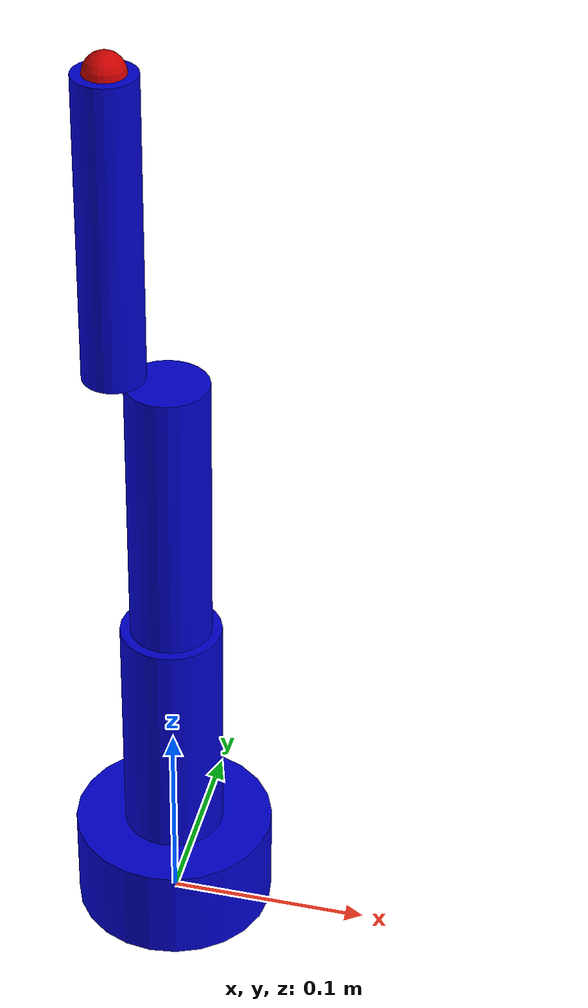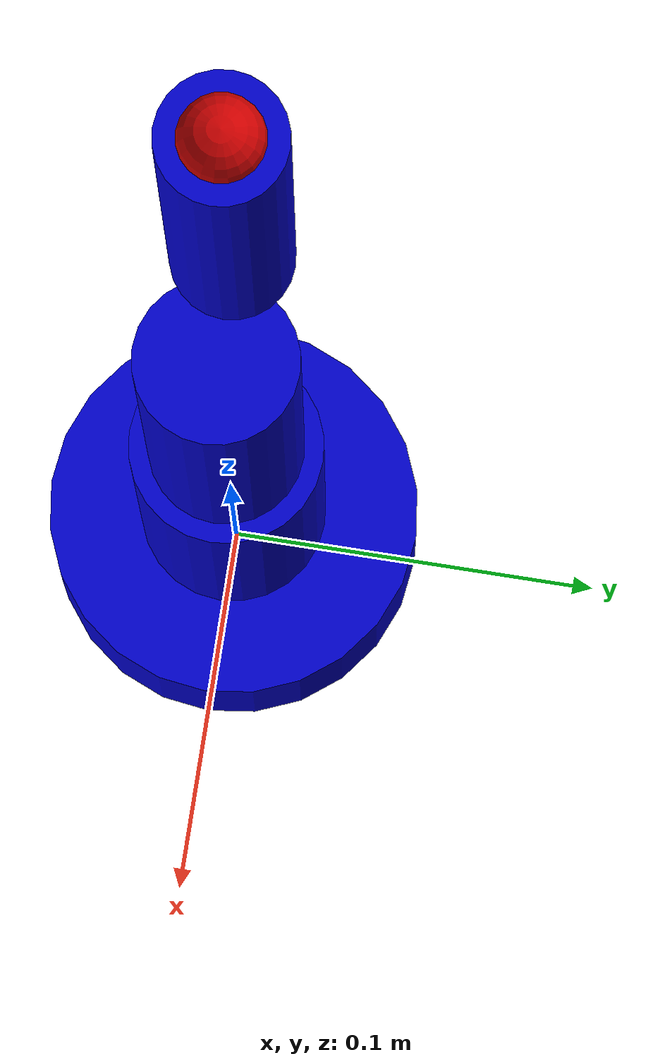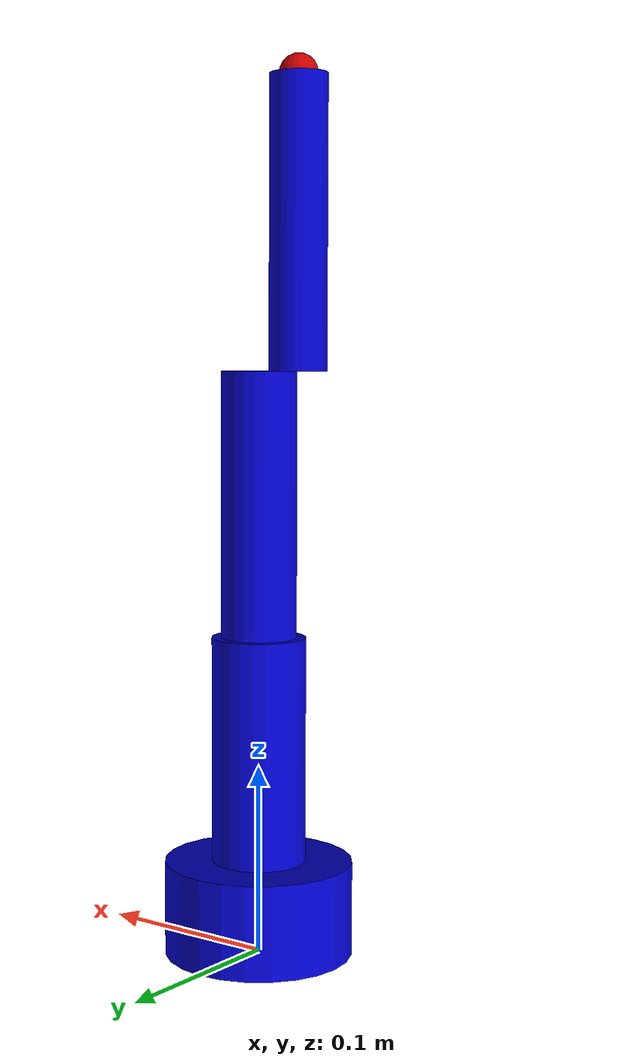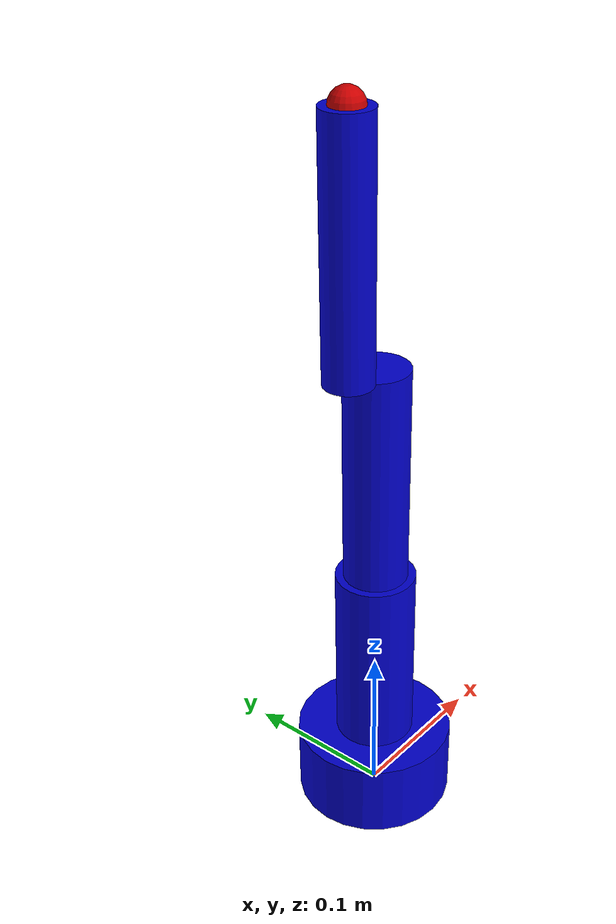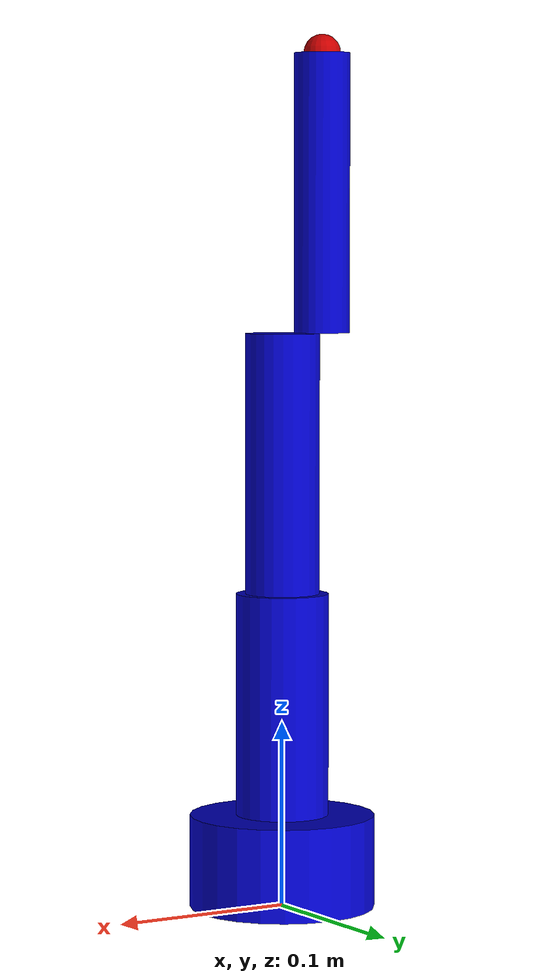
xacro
<?xml version="1.0"?>
<robot xmlns:xacro="http://www.ros.org/wiki/xacro" name="robotarm">
    <xacro:arg name="initial_positions_file" default="initial_positions.yaml" />

    <!-- Import robotarm urdf file -->
    <xacro:include filename="$(find robotarm_software)/urdf/robotarm.urdf" />

    <!-- Import control_xacro -->
    <xacro:include filename="robotarm.ros2_control.xacro" />

    <xacro:robotarm_ros2_control name="FakeSystem" initial_positions_file="$(arg initial_positions_file)"/>

</robot>

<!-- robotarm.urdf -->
<robot name="robotarm">
  <material name="blue">
    <color rgba="0 0 0.8 1"/>
  </material>

  <material name="black">
    <color rgba="0 0 0 1"/>
  </material>

  <material name="red">
    <color rgba="0.8 0 0 1"/>
  </material>

  <link name="base_link">
    <visual>
      <geometry>
        <cylinder length="0.05" radius="0.05"/>
      </geometry>
      <origin xyz="0 0 0.025"/>
      <material name="blue"/>
    </visual>
    <collision>
      <geometry>
        <cylinder length="0.05" radius="0.06"/>
      </geometry>
      <origin xyz="0 0 0.025"/>
    </collision>
  </link>

  <link name="column_link">
    <visual>
      <geometry>
        <cylinder length="0.12" radius="0.025"/>
      </geometry>
      <origin xyz="0 0 0.06"/>
      <material name="blue"/>
    </visual>
    <collision>
      <geometry>
        <cylinder length="0.12" radius="0.035"/>
      </geometry>
      <origin xyz="0 0 0.06"/>
    </collision>
  </link>

  <joint name="base_joint" type="revolute">
    <parent link="base_link"/>
    <child link="column_link"/>
    <origin xyz="0 0 0.05"/>
    <axis xyz="0 0 1"/>
    <limit effort="100" lower="-3.14159265" upper="3.14159265" velocity="0.30"/>
  </joint>

  <link name="upper_arm_link">
    <visual>
      <geometry>
        <cylinder length="0.14" radius="0.02"/>
      </geometry>
      <origin xyz="0 0 0.07"/>
      <material name="blue"/>
    </visual>
    <collision>
      <geometry>
        <cylinder length="0.14" radius="0.03"/>
      </geometry>
      <origin xyz="0 0 0.07"/>
    </collision>
  </link>

  <joint name="shoulder_joint" type="revolute">
    <parent link="column_link"/>
    <child link="upper_arm_link"/>
    <origin xyz="0 0 0.12"/>
    <axis xyz="0 1 0"/>
    <limit effort="81" lower="-0.52359878" upper="1.39626340" velocity="0.18"/>
  </joint>

  <link name="lower_arm_link">
    <visual>
      <geometry>
        <cylinder length="0.15" radius="0.015"/>
      </geometry>
      <origin xyz="0 0 0.075"/>
      <material name="blue"/>
    </visual>
    <collision>
      <geometry>
        <cylinder length="0.15" radius="0.025"/>
      </geometry>
      <origin xyz="0 0 0.075"/>
    </collision>
  </link>

  <joint name="elbow_joint" type="revolute">
    <parent link="upper_arm_link"/>
    <child link="lower_arm_link"/>
    <origin xyz="-0.025 0 0.14"/>
    <axis xyz="0 1 0"/>
    <limit effort="81" lower="-0.69813170" upper="2.44346095" velocity="0.22"/>
  </joint>

  <!-- Tool tip frame at the physical end of the lower arm.
       lower_arm_link visual length is 0.15 m along local +Z,
       so the tip is at z = 0.15 in lower_arm_link frame. -->
  <link name="tool_tip_link">
    <visual>
      <geometry>
        <sphere radius="0.01"/>
      </geometry>
      <origin xyz="0 0 0"/>
      <material name="red"/>
    </visual>
    <collision>
      <geometry>
        <sphere radius="0.012"/>
      </geometry>
      <origin xyz="0 0 0"/>
    </collision>
  </link>

  <joint name="tool_tip_fixed_joint" type="fixed">
    <parent link="lower_arm_link"/>
    <child link="tool_tip_link"/>
    <origin xyz="0 0 0.15" rpy="0 0 0"/>
  </joint>

  <ros2_control name="RobotArmSystem" type="system">
    <hardware>
      <plugin>robotarm_hardware/RobotArmSystem</plugin>
    </hardware>

    <joint name="base_joint">
      <command_interface name="velocity"/>
      <state_interface name="position"/>
      <state_interface name="velocity"/>
    </joint>

    <joint name="shoulder_joint">
      <command_interface name="velocity"/>
      <state_interface name="position"/>
      <state_interface name="velocity"/>
    </joint>

    <joint name="elbow_joint">
      <command_interface name="velocity"/>
      <state_interface name="position"/>
      <state_interface name="velocity"/>
    </joint>
  </ros2_control>
</robot>
